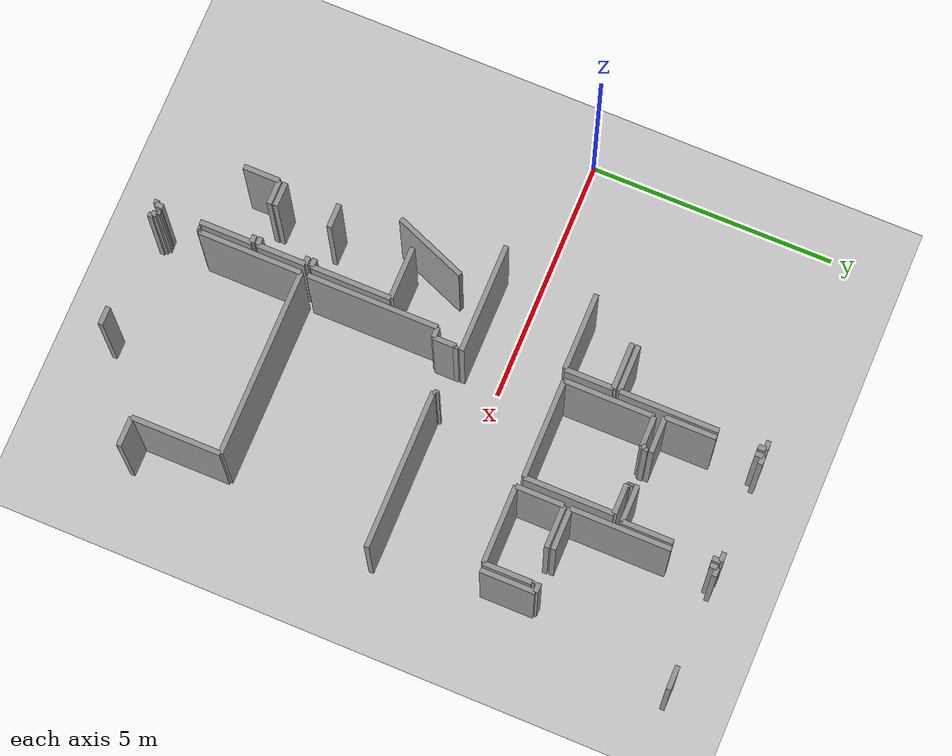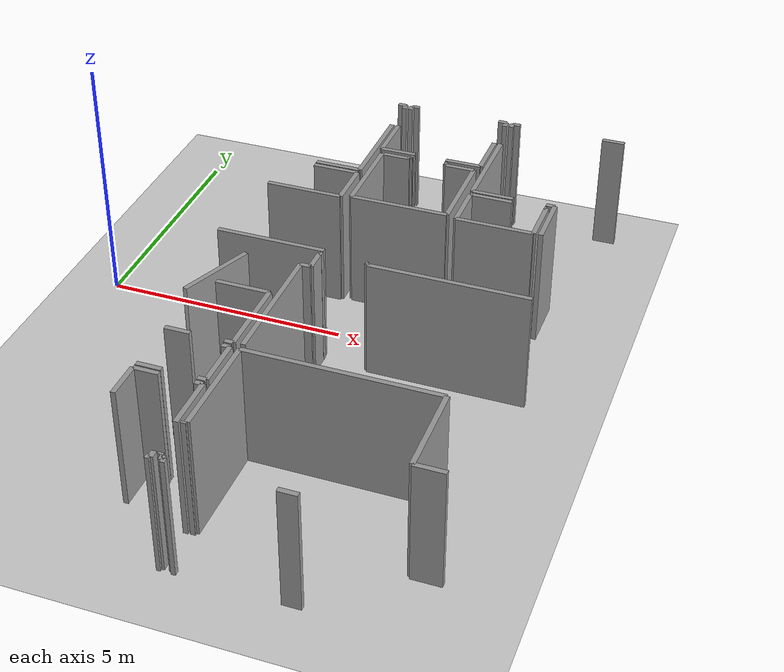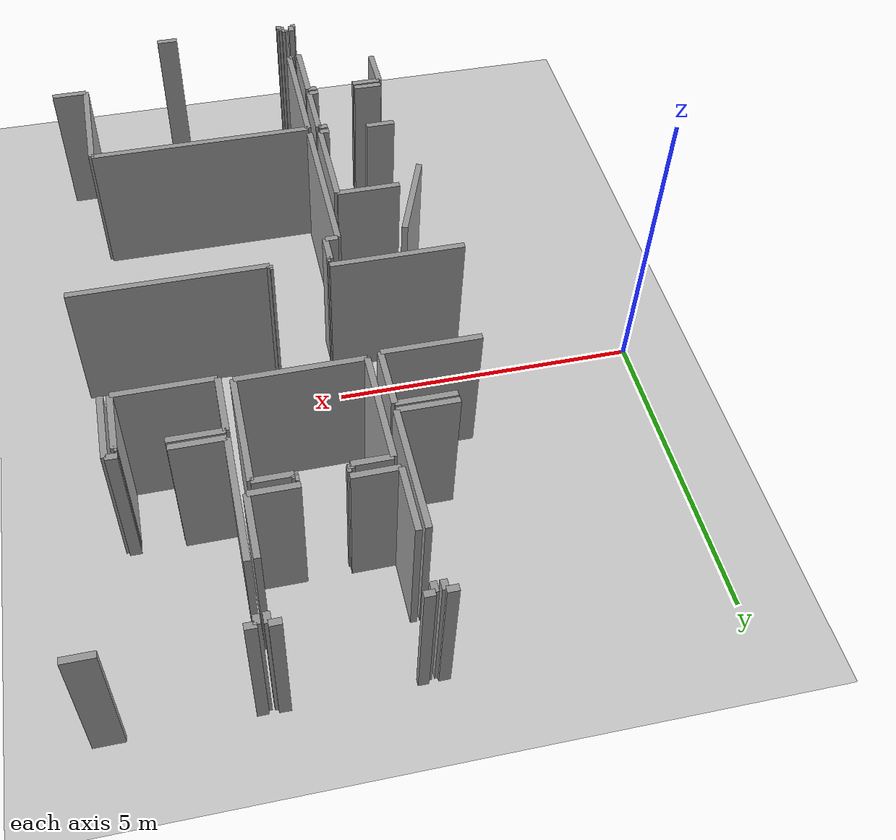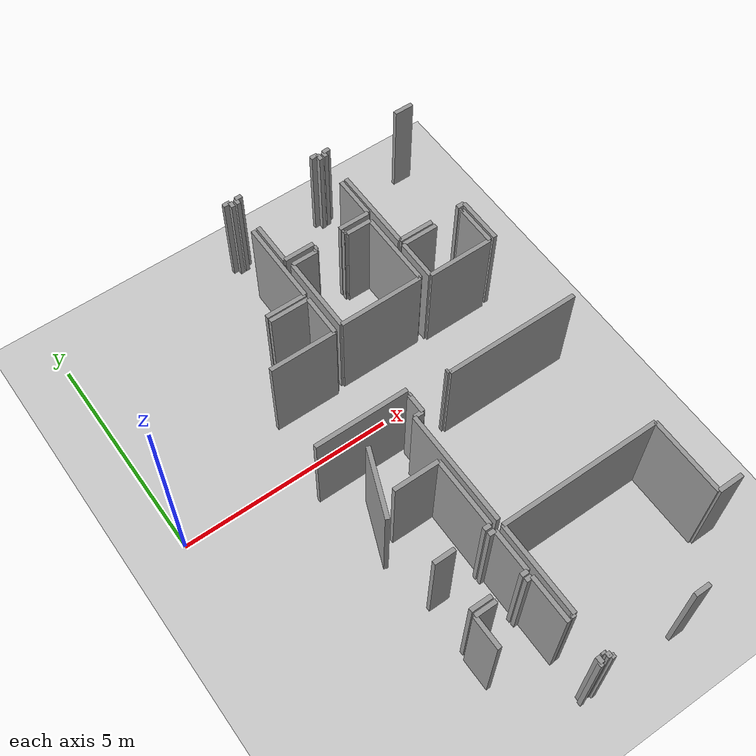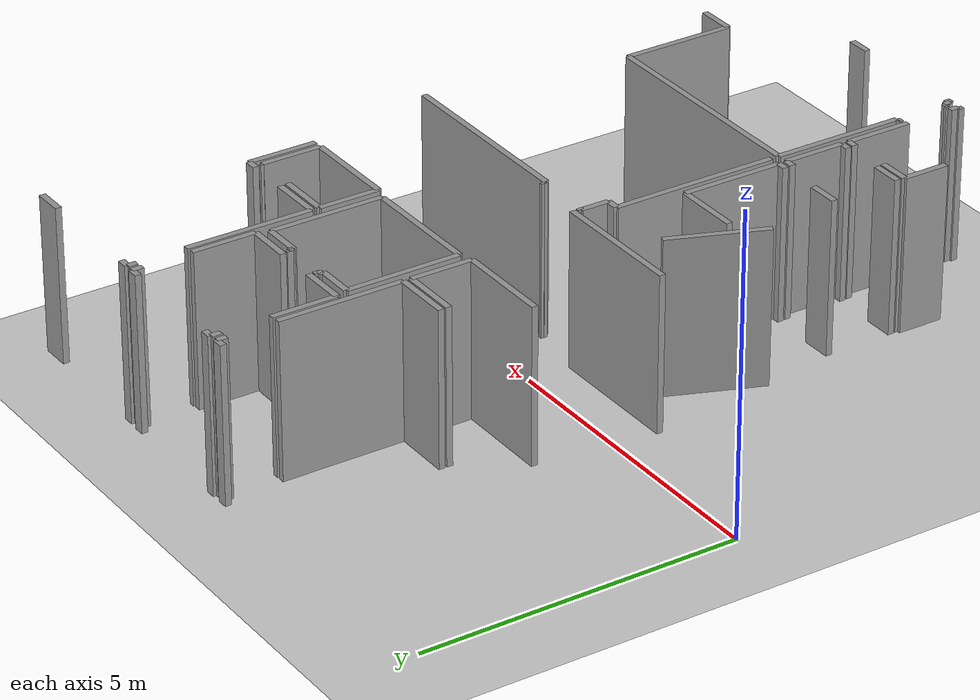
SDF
<sdf version="1.6">
 <world name="default">
  <model name="ground_plane">
   <static>1</static>
   <link name="link">
    <collision name="collision">
     <geometry><plane><normal>0 0 1</normal><size>100 100</size></plane></geometry>
     <surface><friction><ode><mu>100</mu><mu2>50</mu2></ode></friction></surface>
    </collision>
    <visual name="visual">
     <cast_shadows>0</cast_shadows>
     <geometry><plane><normal>0 0 1</normal><size>100 100</size></plane></geometry>
     <material>
      <script><uri>file://media/materials/scripts/gazebo.material</uri><name>Gazebo/Grey</name></script>
     </material>
    </visual>
   </link>
  </model>
  <model name="0510025537_Layout1_PLAN1">
   <static>1</static>
   <link name="Wall_214">
    <collision name="Wall_214_Collision">
     <geometry><box><size>1.56992278118 0.1 2.5</size></box></geometry>
     <pose>0.78496139059 0 1.25 0 0 0</pose>
    </collision>
    <visual name="Wall_214_Visual">
     <pose>0.78496139059 0 1.25 0 0 0</pose>
     <geometry><box><size>1.56992278118 0.1 2.5</size></box></geometry>
     <material>
      <script><uri>file://media/materials/scripts/gazebo.material</uri><name>Gazebo/Grey</name></script>
      <ambient>1 1 1 1</ambient>
     </material>
    </visual>
    <pose>24.0205884222 -6.77917010866 0 0 0 -1.94953638608</pose>
   </link>
   <link name="Wall_221">
    <collision name="Wall_221_Collision">
     <geometry><box><size>1.06271843426 0.1 2.5</size></box></geometry>
     <pose>0.531359217132 0 1.25 0 0 0</pose>
    </collision>
    <visual name="Wall_221_Visual">
     <pose>0.531359217132 0 1.25 0 0 0</pose>
     <geometry><box><size>1.06271843426 0.1 2.5</size></box></geometry>
     <material>
      <script><uri>file://media/materials/scripts/gazebo.material</uri><name>Gazebo/Grey</name></script>
      <ambient>1 1 1 1</ambient>
     </material>
    </visual>
    <pose>23.8792654254 -7.81539048103 0 0 0 0.0</pose>
   </link>
   <link name="Wall_222">
    <collision name="Wall_222_Collision">
     <geometry><box><size>1.6118065705 0.1 2.5</size></box></geometry>
     <pose>0.805903285251 0 1.25 0 0 0</pose>
    </collision>
    <visual name="Wall_222_Visual">
     <pose>0.805903285251 0 1.25 0 0 0</pose>
     <geometry><box><size>1.6118065705 0.1 2.5</size></box></geometry>
     <material>
      <script><uri>file://media/materials/scripts/gazebo.material</uri><name>Gazebo/Grey</name></script>
      <ambient>1 1 1 1</ambient>
     </material>
    </visual>
    <pose>24.9419838597 -7.81539048103 0 0 0 -1.57079632679</pose>
   </link>
   <link name="Wall_223">
    <collision name="Wall_223_Collision">
     <geometry><box><size>0.160068628074 0.1 2.5</size></box></geometry>
     <pose>0.080034314037 0 1.25 0 0 0</pose>
    </collision>
    <visual name="Wall_223_Visual">
     <pose>0.080034314037 0 1.25 0 0 0</pose>
     <geometry><box><size>0.160068628074 0.1 2.5</size></box></geometry>
     <material>
      <script><uri>file://media/materials/scripts/gazebo.material</uri><name>Gazebo/Grey</name></script>
      <ambient>1 1 1 1</ambient>
     </material>
    </visual>
    <pose>24.9419838597 -9.42719705153 0 0 0 3.14159265359</pose>
   </link>
   <link name="Wall_224">
    <collision name="Wall_224_Collision">
     <geometry><box><size>0.493043354087 0.1 2.5</size></box></geometry>
     <pose>0.246521677044 0 1.25 0 0 0</pose>
    </collision>
    <visual name="Wall_224_Visual">
     <pose>0.246521677044 0 1.25 0 0 0</pose>
     <geometry><box><size>0.493043354087 0.1 2.5</size></box></geometry>
     <material>
      <script><uri>file://media/materials/scripts/gazebo.material</uri><name>Gazebo/Grey</name></script>
      <ambient>1 1 1 1</ambient>
     </material>
    </visual>
    <pose>24.1138082227 -9.42719705153 0 0 0 -3.13914388931</pose>
   </link>
   <link name="Wall_227">
    <collision name="Wall_227_Collision">
     <geometry><box><size>0.153015187139 0.1 2.5</size></box></geometry>
     <pose>0.0765075935693 0 1.25 0 0 0</pose>
    </collision>
    <visual name="Wall_227_Visual">
     <pose>0.0765075935693 0 1.25 0 0 0</pose>
     <geometry><box><size>0.153015187139 0.1 2.5</size></box></geometry>
     <material>
      <script><uri>file://media/materials/scripts/gazebo.material</uri><name>Gazebo/Grey</name></script>
      <ambient>1 1 1 1</ambient>
     </material>
    </visual>
    <pose>24.7902395628 -9.55956027197 0 0 0 0.0</pose>
   </link>
   <link name="Wall_228">
    <collision name="Wall_228_Collision">
     <geometry><box><size>0.973819660672 0.1 2.5</size></box></geometry>
     <pose>0.486909830336 0 1.25 0 0 0</pose>
    </collision>
    <visual name="Wall_228_Visual">
     <pose>0.486909830336 0 1.25 0 0 0</pose>
     <geometry><box><size>0.973819660672 0.1 2.5</size></box></geometry>
     <material>
      <script><uri>file://media/materials/scripts/gazebo.material</uri><name>Gazebo/Grey</name></script>
      <ambient>1 1 1 1</ambient>
     </material>
    </visual>
    <pose>24.94325475 -9.55956027197 0 0 0 -1.57079632679</pose>
   </link>
   <link name="Wall_229">
    <collision name="Wall_229_Collision">
     <geometry><box><size>0.161212429307 0.1 2.5</size></box></geometry>
     <pose>0.0806062146534 0 1.25 0 0 0</pose>
    </collision>
    <visual name="Wall_229_Visual">
     <pose>0.0806062146534 0 1.25 0 0 0</pose>
     <geometry><box><size>0.161212429307 0.1 2.5</size></box></geometry>
     <material>
      <script><uri>file://media/materials/scripts/gazebo.material</uri><name>Gazebo/Grey</name></script>
      <ambient>1 1 1 1</ambient>
     </material>
    </visual>
    <pose>24.94325475 -10.5333799326 0 0 0 3.14159265359</pose>
   </link>
   <link name="Wall_230">
    <collision name="Wall_230_Collision">
     <geometry><box><size>0.487584008335 0.1 2.5</size></box></geometry>
     <pose>0.243792004167 0 1.25 0 0 0</pose>
    </collision>
    <visual name="Wall_230_Visual">
     <pose>0.243792004167 0 1.25 0 0 0</pose>
     <geometry><box><size>0.487584008335 0.1 2.5</size></box></geometry>
     <material>
      <script><uri>file://media/materials/scripts/gazebo.material</uri><name>Gazebo/Grey</name></script>
      <ambient>1 1 1 1</ambient>
     </material>
    </visual>
    <pose>24.1090423842 -10.5333799326 0 0 0 3.13624929248</pose>
   </link>
   <link name="Wall_231">
    <collision name="Wall_231_Collision">
     <geometry><box><size>0.494948211222 0.1 2.5</size></box></geometry>
     <pose>0.247474105611 0 1.25 0 0 0</pose>
    </collision>
    <visual name="Wall_231_Visual">
     <pose>0.247474105611 0 1.25 0 0 0</pose>
     <geometry><box><size>0.494948211222 0.1 2.5</size></box></geometry>
     <material>
      <script><uri>file://media/materials/scripts/gazebo.material</uri><name>Gazebo/Grey</name></script>
      <ambient>1 1 1 1</ambient>
     </material>
    </visual>
    <pose>23.6245790176 -10.6559572981 0 0 0 0.0</pose>
   </link>
   <link name="Wall_232">
    <collision name="Wall_232_Collision">
     <geometry><box><size>0.150791129186 0.1 2.5</size></box></geometry>
     <pose>0.075395564593 0 1.25 0 0 0</pose>
    </collision>
    <visual name="Wall_232_Visual">
     <pose>0.075395564593 0 1.25 0 0 0</pose>
     <geometry><box><size>0.150791129186 0.1 2.5</size></box></geometry>
     <material>
      <script><uri>file://media/materials/scripts/gazebo.material</uri><name>Gazebo/Grey</name></script>
      <ambient>1 1 1 1</ambient>
     </material>
    </visual>
    <pose>24.7901760183 -10.6559572981 0 0 0 0.0</pose>
   </link>
   <link name="Wall_233">
    <collision name="Wall_233_Collision">
     <geometry><box><size>1.0594776641 0.1 2.5</size></box></geometry>
     <pose>0.529738832052 0 1.25 0 0 0</pose>
    </collision>
    <visual name="Wall_233_Visual">
     <pose>0.529738832052 0 1.25 0 0 0</pose>
     <geometry><box><size>1.0594776641 0.1 2.5</size></box></geometry>
     <material>
      <script><uri>file://media/materials/scripts/gazebo.material</uri><name>Gazebo/Grey</name></script>
      <ambient>1 1 1 1</ambient>
     </material>
    </visual>
    <pose>24.9409671475 -10.6559572981 0 0 0 -1.57079632679</pose>
   </link>
   <link name="Wall_234">
    <collision name="Wall_234_Collision">
     <geometry><box><size>0.149965050518 0.1 2.5</size></box></geometry>
     <pose>0.0749825252589 0 1.25 0 0 0</pose>
    </collision>
    <visual name="Wall_234_Visual">
     <pose>0.0749825252589 0 1.25 0 0 0</pose>
     <geometry><box><size>0.149965050518 0.1 2.5</size></box></geometry>
     <material>
      <script><uri>file://media/materials/scripts/gazebo.material</uri><name>Gazebo/Grey</name></script>
      <ambient>1 1 1 1</ambient>
     </material>
    </visual>
    <pose>24.9409671475 -12.4803202643 0 0 0 -1.57079632679</pose>
   </link>
   <link name="Wall_235">
    <collision name="Wall_235_Collision">
     <geometry><box><size>0.0826714113236 0.1 2.5</size></box></geometry>
     <pose>0.0413357056618 0 1.25 0 0 0</pose>
    </collision>
    <visual name="Wall_235_Visual">
     <pose>0.0413357056618 0 1.25 0 0 0</pose>
     <geometry><box><size>0.0826714113236 0.1 2.5</size></box></geometry>
     <material>
      <script><uri>file://media/materials/scripts/gazebo.material</uri><name>Gazebo/Grey</name></script>
      <ambient>1 1 1 1</ambient>
     </material>
    </visual>
    <pose>24.9409671475 -12.6302853149 0 0 0 3.14159265359</pose>
   </link>
   <link name="Wall_239">
    <collision name="Wall_239_Collision">
     <geometry><box><size>0.732668234098 0.1 2.5</size></box></geometry>
     <pose>0.366334117049 0 1.25 0 0 0</pose>
    </collision>
    <visual name="Wall_239_Visual">
     <pose>0.366334117049 0 1.25 0 0 0</pose>
     <geometry><box><size>0.732668234098 0.1 2.5</size></box></geometry>
     <material>
      <script><uri>file://media/materials/scripts/gazebo.material</uri><name>Gazebo/Grey</name></script>
      <ambient>1 1 1 1</ambient>
     </material>
    </visual>
    <pose>23.6245790176 -11.3886255322 0 0 0 1.57079632679</pose>
   </link>
   <link name="Wall_240">
    <collision name="Wall_240_Collision">
     <geometry><box><size>3.77155747601 0.1 2.5</size></box></geometry>
     <pose>1.88577873801 0 1.25 0 0 0</pose>
    </collision>
    <visual name="Wall_240_Visual">
     <pose>1.88577873801 0 1.25 0 0 0</pose>
     <geometry><box><size>3.77155747601 0.1 2.5</size></box></geometry>
     <material>
      <script><uri>file://media/materials/scripts/gazebo.material</uri><name>Gazebo/Grey</name></script>
      <ambient>1 1 1 1</ambient>
     </material>
    </visual>
    <pose>25.1293130838 -9.56324585372 0 0 0 0.0</pose>
   </link>
   <link name="Wall_241">
    <collision name="Wall_241_Collision">
     <geometry><box><size>1.79875452755 0.1 2.5</size></box></geometry>
     <pose>0.899377263773 0 1.25 0 0 0</pose>
    </collision>
    <visual name="Wall_241_Visual">
     <pose>0.899377263773 0 1.25 0 0 0</pose>
     <geometry><box><size>1.79875452755 0.1 2.5</size></box></geometry>
     <material>
      <script><uri>file://media/materials/scripts/gazebo.material</uri><name>Gazebo/Grey</name></script>
      <ambient>1 1 1 1</ambient>
     </material>
    </visual>
    <pose>28.9008705598 -9.56324585372 0 0 0 -1.57079632679</pose>
   </link>
   <link name="Wall_242">
    <collision name="Wall_242_Collision">
     <geometry><box><size>0.589693080003 0.1 2.5</size></box></geometry>
     <pose>0.294846540001 0 1.25 0 0 0</pose>
    </collision>
    <visual name="Wall_242_Visual">
     <pose>0.294846540001 0 1.25 0 0 0</pose>
     <geometry><box><size>0.589693080003 0.1 2.5</size></box></geometry>
     <material>
      <script><uri>file://media/materials/scripts/gazebo.material</uri><name>Gazebo/Grey</name></script>
      <ambient>1 1 1 1</ambient>
     </material>
    </visual>
    <pose>28.9008705598 -11.3620003813 0 0 0 0.0</pose>
   </link>
   <link name="Wall_246">
    <collision name="Wall_246_Collision">
     <geometry><box><size>0.364681959713 0.1 2.5</size></box></geometry>
     <pose>0.182340979856 0 1.25 0 0 0</pose>
    </collision>
    <visual name="Wall_246_Visual">
     <pose>0.182340979856 0 1.25 0 0 0</pose>
     <geometry><box><size>0.364681959713 0.1 2.5</size></box></geometry>
     <material>
      <script><uri>file://media/materials/scripts/gazebo.material</uri><name>Gazebo/Grey</name></script>
      <ambient>1 1 1 1</ambient>
     </material>
    </visual>
    <pose>27.4918980746 -12.6327000064 0 0 0 3.14159265359</pose>
   </link>
   <link name="Wall_247">
    <collision name="Wall_247_Collision">
     <geometry><box><size>0.087882061384 0.1 2.5</size></box></geometry>
     <pose>0.043941030692 0 1.25 0 0 0</pose>
    </collision>
    <visual name="Wall_247_Visual">
     <pose>0.043941030692 0 1.25 0 0 0</pose>
     <geometry><box><size>0.087882061384 0.1 2.5</size></box></geometry>
     <material>
      <script><uri>file://media/materials/scripts/gazebo.material</uri><name>Gazebo/Grey</name></script>
      <ambient>1 1 1 1</ambient>
     </material>
    </visual>
    <pose>25.2171951452 -12.6327000064 0 0 0 3.14159265359</pose>
   </link>
   <link name="Wall_248">
    <collision name="Wall_248_Collision">
     <geometry><box><size>0.110313274449 0.1 2.5</size></box></geometry>
     <pose>0.0551566372244 0 1.25 0 0 0</pose>
    </collision>
    <visual name="Wall_248_Visual">
     <pose>0.0551566372244 0 1.25 0 0 0</pose>
     <geometry><box><size>0.110313274449 0.1 2.5</size></box></geometry>
     <material>
      <script><uri>file://media/materials/scripts/gazebo.material</uri><name>Gazebo/Grey</name></script>
      <ambient>1 1 1 1</ambient>
     </material>
    </visual>
    <pose>25.1293130838 -12.6327000064 0 0 0 1.57079632679</pose>
   </link>
   <link name="Wall_249">
    <collision name="Wall_249_Collision">
     <geometry><box><size>0.0589057634873 0.1 2.5</size></box></geometry>
     <pose>0.0294528817437 0 1.25 0 0 0</pose>
    </collision>
    <visual name="Wall_249_Visual">
     <pose>0.0294528817437 0 1.25 0 0 0</pose>
     <geometry><box><size>0.0589057634873 0.1 2.5</size></box></geometry>
     <material>
      <script><uri>file://media/materials/scripts/gazebo.material</uri><name>Gazebo/Grey</name></script>
      <ambient>1 1 1 1</ambient>
     </material>
    </visual>
    <pose>25.1293130838 -12.5223867319 0 0 0 3.14159265359</pose>
   </link>
   <link name="Wall_250">
    <collision name="Wall_250_Collision">
     <geometry><box><size>0.0493740865476 0.1 2.5</size></box></geometry>
     <pose>0.0246870432738 0 1.25 0 0 0</pose>
    </collision>
    <visual name="Wall_250_Visual">
     <pose>0.0246870432738 0 1.25 0 0 0</pose>
     <geometry><box><size>0.0493740865476 0.1 2.5</size></box></geometry>
     <material>
      <script><uri>file://media/materials/scripts/gazebo.material</uri><name>Gazebo/Grey</name></script>
      <ambient>1 1 1 1</ambient>
     </material>
    </visual>
    <pose>25.0704073203 -12.5223867319 0 0 0 1.57079632679</pose>
   </link>
   <link name="Wall_251">
    <collision name="Wall_251_Collision">
     <geometry><box><size>0.0510897883968 0.1 2.5</size></box></geometry>
     <pose>0.0255448941984 0 1.25 0 0 0</pose>
    </collision>
    <visual name="Wall_251_Visual">
     <pose>0.0255448941984 0 1.25 0 0 0</pose>
     <geometry><box><size>0.0510897883968 0.1 2.5</size></box></geometry>
     <material>
      <script><uri>file://media/materials/scripts/gazebo.material</uri><name>Gazebo/Grey</name></script>
      <ambient>1 1 1 1</ambient>
     </material>
    </visual>
    <pose>25.0704073203 -11.7058397407 0 0 0 1.57079632679</pose>
   </link>
   <link name="Wall_252">
    <collision name="Wall_252_Collision">
     <geometry><box><size>0.0529325792718 0.1 2.5</size></box></geometry>
     <pose>0.0264662896359 0 1.25 0 0 0</pose>
    </collision>
    <visual name="Wall_252_Visual">
     <pose>0.0264662896359 0 1.25 0 0 0</pose>
     <geometry><box><size>0.0529325792718 0.1 2.5</size></box></geometry>
     <material>
      <script><uri>file://media/materials/scripts/gazebo.material</uri><name>Gazebo/Grey</name></script>
      <ambient>1 1 1 1</ambient>
     </material>
    </visual>
    <pose>25.0704073203 -11.6547499523 0 0 0 0.0</pose>
   </link>
   <link name="Wall_253">
    <collision name="Wall_253_Collision">
     <geometry><box><size>2.09151262809 0.1 2.5</size></box></geometry>
     <pose>1.04575631405 0 1.25 0 0 0</pose>
    </collision>
    <visual name="Wall_253_Visual">
     <pose>1.04575631405 0 1.25 0 0 0</pose>
     <geometry><box><size>2.09151262809 0.1 2.5</size></box></geometry>
     <material>
      <script><uri>file://media/materials/scripts/gazebo.material</uri><name>Gazebo/Grey</name></script>
      <ambient>1 1 1 1</ambient>
     </material>
    </visual>
    <pose>25.1233398996 -11.6547499523 0 0 0 1.56794040699</pose>
   </link>
   <link name="Wall_283">
    <collision name="Wall_283_Collision">
     <geometry><box><size>2.64955201118 0.1 2.5</size></box></geometry>
     <pose>1.32477600559 0 1.25 0 0 0</pose>
    </collision>
    <visual name="Wall_283_Visual">
     <pose>1.32477600559 0 1.25 0 0 0</pose>
     <geometry><box><size>2.64955201118 0.1 2.5</size></box></geometry>
     <material>
      <script><uri>file://media/materials/scripts/gazebo.material</uri><name>Gazebo/Grey</name></script>
      <ambient>1 1 1 1</ambient>
     </material>
    </visual>
    <pose>25.1270890259 -9.42687932897 0 0 0 1.57079632679</pose>
   </link>
   <link name="Wall_284">
    <collision name="Wall_284_Collision">
     <geometry><box><size>0.206773845078 0.1 2.5</size></box></geometry>
     <pose>0.103386922539 0 1.25 0 0 0</pose>
    </collision>
    <visual name="Wall_284_Visual">
     <pose>0.103386922539 0 1.25 0 0 0</pose>
     <geometry><box><size>0.206773845078 0.1 2.5</size></box></geometry>
     <material>
      <script><uri>file://media/materials/scripts/gazebo.material</uri><name>Gazebo/Grey</name></script>
      <ambient>1 1 1 1</ambient>
     </material>
    </visual>
    <pose>25.1270890259 -6.77732731779 0 0 0 0.0</pose>
   </link>
   <link name="Wall_285">
    <collision name="Wall_285_Collision">
     <geometry><box><size>0.457584037618 0.1 2.5</size></box></geometry>
     <pose>0.228792018809 0 1.25 0 0 0</pose>
    </collision>
    <visual name="Wall_285_Visual">
     <pose>0.228792018809 0 1.25 0 0 0</pose>
     <geometry><box><size>0.457584037618 0.1 2.5</size></box></geometry>
     <material>
      <script><uri>file://media/materials/scripts/gazebo.material</uri><name>Gazebo/Grey</name></script>
      <ambient>1 1 1 1</ambient>
     </material>
    </visual>
    <pose>25.3338628709 -6.77732731779 0 0 0 1.57079632679</pose>
   </link>
   <link name="Wall_286">
    <collision name="Wall_286_Collision">
     <geometry><box><size>0.0519158670649 0.1 2.5</size></box></geometry>
     <pose>0.0259579335324 0 1.25 0 0 0</pose>
    </collision>
    <visual name="Wall_286_Visual">
     <pose>0.0259579335324 0 1.25 0 0 0</pose>
     <geometry><box><size>0.0519158670649 0.1 2.5</size></box></geometry>
     <material>
      <script><uri>file://media/materials/scripts/gazebo.material</uri><name>Gazebo/Grey</name></script>
      <ambient>1 1 1 1</ambient>
     </material>
    </visual>
    <pose>25.3338628709 -6.31974328017 0 0 0 0.0</pose>
   </link>
   <link name="Wall_287">
    <collision name="Wall_287_Collision">
     <geometry><box><size>0.0464510389528 0.1 2.5</size></box></geometry>
     <pose>0.0232255194764 0 1.25 0 0 0</pose>
    </collision>
    <visual name="Wall_287_Visual">
     <pose>0.0232255194764 0 1.25 0 0 0</pose>
     <geometry><box><size>0.0464510389528 0.1 2.5</size></box></geometry>
     <material>
      <script><uri>file://media/materials/scripts/gazebo.material</uri><name>Gazebo/Grey</name></script>
      <ambient>1 1 1 1</ambient>
     </material>
    </visual>
    <pose>26.2525894389 -6.31974328017 0 0 0 0.0</pose>
   </link>
   <link name="Wall_288">
    <collision name="Wall_288_Collision">
     <geometry><box><size>0.0525513121942 0.1 2.5</size></box></geometry>
     <pose>0.0262756560971 0 1.25 0 0 0</pose>
    </collision>
    <visual name="Wall_288_Visual">
     <pose>0.0262756560971 0 1.25 0 0 0</pose>
     <geometry><box><size>0.0525513121942 0.1 2.5</size></box></geometry>
     <material>
      <script><uri>file://media/materials/scripts/gazebo.material</uri><name>Gazebo/Grey</name></script>
      <ambient>1 1 1 1</ambient>
     </material>
    </visual>
    <pose>26.2990404779 -6.31974328017 0 0 0 -1.57079632679</pose>
   </link>
   <link name="Wall_289">
    <collision name="Wall_289_Collision">
     <geometry><box><size>3.19520874372 0.1 2.5</size></box></geometry>
     <pose>1.59760437186 0 1.25 0 0 0</pose>
    </collision>
    <visual name="Wall_289_Visual">
     <pose>1.59760437186 0 1.25 0 0 0</pose>
     <geometry><box><size>3.19520874372 0.1 2.5</size></box></geometry>
     <material>
      <script><uri>file://media/materials/scripts/gazebo.material</uri><name>Gazebo/Grey</name></script>
      <ambient>1 1 1 1</ambient>
     </material>
    </visual>
    <pose>26.2990404779 -6.37229459236 0 0 0 0.0</pose>
   </link>
   <link name="Wall_301">
    <collision name="Wall_301_Collision">
     <geometry><box><size>0.961936836754 0.1 2.5</size></box></geometry>
     <pose>0.480968418377 0 1.25 0 0 0</pose>
    </collision>
    <visual name="Wall_301_Visual">
     <pose>0.480968418377 0 1.25 0 0 0</pose>
     <geometry><box><size>0.961936836754 0.1 2.5</size></box></geometry>
     <material>
      <script><uri>file://media/materials/scripts/gazebo.material</uri><name>Gazebo/Grey</name></script>
      <ambient>1 1 1 1</ambient>
     </material>
    </visual>
    <pose>27.378471119 -4.27100463875 0 0 0 1.57079632679</pose>
   </link>
   <link name="Wall_302">
    <collision name="Wall_302_Collision">
     <geometry><box><size>0.85670712334 0.1 2.5</size></box></geometry>
     <pose>0.42835356167 0 1.25 0 0 0</pose>
    </collision>
    <visual name="Wall_302_Visual">
     <pose>0.42835356167 0 1.25 0 0 0</pose>
     <geometry><box><size>0.85670712334 0.1 2.5</size></box></geometry>
     <material>
      <script><uri>file://media/materials/scripts/gazebo.material</uri><name>Gazebo/Grey</name></script>
      <ambient>1 1 1 1</ambient>
     </material>
    </visual>
    <pose>27.378471119 -3.309067802 0 0 0 0.0</pose>
   </link>
   <link name="Wall_303">
    <collision name="Wall_303_Collision">
     <geometry><box><size>0.0455614157717 0.1 2.5</size></box></geometry>
     <pose>0.0227807078859 0 1.25 0 0 0</pose>
    </collision>
    <visual name="Wall_303_Visual">
     <pose>0.0227807078859 0 1.25 0 0 0</pose>
     <geometry><box><size>0.0455614157717 0.1 2.5</size></box></geometry>
     <material>
      <script><uri>file://media/materials/scripts/gazebo.material</uri><name>Gazebo/Grey</name></script>
      <ambient>1 1 1 1</ambient>
     </material>
    </visual>
    <pose>28.8952150982 -3.309067802 0 0 0 0.0</pose>
   </link>
   <link name="Wall_304">
    <collision name="Wall_304_Collision">
     <geometry><box><size>0.958251255004 0.1 2.5</size></box></geometry>
     <pose>0.479125627502 0 1.25 0 0 0</pose>
    </collision>
    <visual name="Wall_304_Visual">
     <pose>0.479125627502 0 1.25 0 0 0</pose>
     <geometry><box><size>0.958251255004 0.1 2.5</size></box></geometry>
     <material>
      <script><uri>file://media/materials/scripts/gazebo.material</uri><name>Gazebo/Grey</name></script>
      <ambient>1 1 1 1</ambient>
     </material>
    </visual>
    <pose>28.9407765139 -3.309067802 0 0 0 -1.57079632679</pose>
   </link>
   <link name="Wall_305">
    <collision name="Wall_305_Collision">
     <geometry><box><size>1.56230974219 0.1 2.5</size></box></geometry>
     <pose>0.781154871094 0 1.25 0 0 0</pose>
    </collision>
    <visual name="Wall_305_Visual">
     <pose>0.781154871094 0 1.25 0 0 0</pose>
     <geometry><box><size>1.56230974219 0.1 2.5</size></box></geometry>
     <material>
      <script><uri>file://media/materials/scripts/gazebo.material</uri><name>Gazebo/Grey</name></script>
      <ambient>1 1 1 1</ambient>
     </material>
    </visual>
    <pose>28.9407765139 -4.267319057 0 0 0 -3.13923359183</pose>
   </link>
   <link name="Wall_311">
    <collision name="Wall_311_Collision">
     <geometry><box><size>2.00758086039 0.1 2.5</size></box></geometry>
     <pose>1.0037904302 0 1.25 0 0 0</pose>
    </collision>
    <visual name="Wall_311_Visual">
     <pose>1.0037904302 0 1.25 0 0 0</pose>
     <geometry><box><size>2.00758086039 0.1 2.5</size></box></geometry>
     <material>
      <script><uri>file://media/materials/scripts/gazebo.material</uri><name>Gazebo/Grey</name></script>
      <ambient>1 1 1 1</ambient>
     </material>
    </visual>
    <pose>27.380949355 -3.18127978649 0 0 0 1.57079632679</pose>
   </link>
   <link name="Wall_312">
    <collision name="Wall_312_Collision">
     <geometry><box><size>0.143553409163 0.1 2.5</size></box></geometry>
     <pose>0.0717767045816 0 1.25 0 0 0</pose>
    </collision>
    <visual name="Wall_312_Visual">
     <pose>0.0717767045816 0 1.25 0 0 0</pose>
     <geometry><box><size>0.143553409163 0.1 2.5</size></box></geometry>
     <material>
      <script><uri>file://media/materials/scripts/gazebo.material</uri><name>Gazebo/Grey</name></script>
      <ambient>1 1 1 1</ambient>
     </material>
    </visual>
    <pose>27.380949355 -0.405922348605 0 0 0 1.57079632679</pose>
   </link>
   <link name="Wall_313">
    <collision name="Wall_313_Collision">
     <geometry><box><size>0.172904619686 0.1 2.5</size></box></geometry>
     <pose>0.086452309843 0 1.25 0 0 0</pose>
    </collision>
    <visual name="Wall_313_Visual">
     <pose>0.086452309843 0 1.25 0 0 0</pose>
     <geometry><box><size>0.172904619686 0.1 2.5</size></box></geometry>
     <material>
      <script><uri>file://media/materials/scripts/gazebo.material</uri><name>Gazebo/Grey</name></script>
      <ambient>1 1 1 1</ambient>
     </material>
    </visual>
    <pose>27.380949355 -0.262368939442 0 0 0 0.0</pose>
   </link>
   <link name="Wall_314">
    <collision name="Wall_314_Collision">
     <geometry><box><size>0.469466861537 0.1 2.5</size></box></geometry>
     <pose>0.234733430768 0 1.25 0 0 0</pose>
    </collision>
    <visual name="Wall_314_Visual">
     <pose>0.234733430768 0 1.25 0 0 0</pose>
     <geometry><box><size>0.469466861537 0.1 2.5</size></box></geometry>
     <material>
      <script><uri>file://media/materials/scripts/gazebo.material</uri><name>Gazebo/Grey</name></script>
      <ambient>1 1 1 1</ambient>
     </material>
    </visual>
    <pose>29.3501938108 -0.262368939442 0 0 0 0.0</pose>
   </link>
   <link name="Wall_322">
    <collision name="Wall_322_Collision">
     <geometry><box><size>1.09569803647 0.1 2.5</size></box></geometry>
     <pose>0.547849018237 0 1.25 0 0 0</pose>
    </collision>
    <visual name="Wall_322_Visual">
     <pose>0.547849018237 0 1.25 0 0 0</pose>
     <geometry><box><size>1.09569803647 0.1 2.5</size></box></geometry>
     <material>
      <script><uri>file://media/materials/scripts/gazebo.material</uri><name>Gazebo/Grey</name></script>
      <ambient>1 1 1 1</ambient>
     </material>
    </visual>
    <pose>29.0817182436 -4.27564338819 0 0 0 1.57079632679</pose>
   </link>
   <link name="Wall_323">
    <collision name="Wall_323_Collision">
     <geometry><box><size>0.184215542988 0.1 2.5</size></box></geometry>
     <pose>0.0921077714939 0 1.25 0 0 0</pose>
    </collision>
    <visual name="Wall_323_Visual">
     <pose>0.0921077714939 0 1.25 0 0 0</pose>
     <geometry><box><size>0.184215542988 0.1 2.5</size></box></geometry>
     <material>
      <script><uri>file://media/materials/scripts/gazebo.material</uri><name>Gazebo/Grey</name></script>
      <ambient>1 1 1 1</ambient>
     </material>
    </visual>
    <pose>29.0817182436 -3.17994535172 0 0 0 3.14159265359</pose>
   </link>
   <link name="Wall_324">
    <collision name="Wall_324_Collision">
     <geometry><box><size>0.840758509589 0.1 2.5</size></box></geometry>
     <pose>0.420379254794 0 1.25 0 0 0</pose>
    </collision>
    <visual name="Wall_324_Visual">
     <pose>0.420379254794 0 1.25 0 0 0</pose>
     <geometry><box><size>0.840758509589 0.1 2.5</size></box></geometry>
     <material>
      <script><uri>file://media/materials/scripts/gazebo.material</uri><name>Gazebo/Grey</name></script>
      <ambient>1 1 1 1</ambient>
     </material>
    </visual>
    <pose>28.2217068056 -3.17994535172 0 0 0 -3.1400054733</pose>
   </link>
   <link name="Wall_334">
    <collision name="Wall_334_Collision">
     <geometry><box><size>0.939251445638 0.1 2.5</size></box></geometry>
     <pose>0.469625722819 0 1.25 0 0 0</pose>
    </collision>
    <visual name="Wall_334_Visual">
     <pose>0.469625722819 0 1.25 0 0 0</pose>
     <geometry><box><size>0.939251445638 0.1 2.5</size></box></geometry>
     <material>
      <script><uri>file://media/materials/scripts/gazebo.material</uri><name>Gazebo/Grey</name></script>
      <ambient>1 1 1 1</ambient>
     </material>
    </visual>
    <pose>24.0228760247 -3.30080701531 0 0 0 0.0</pose>
   </link>
   <link name="Wall_335">
    <collision name="Wall_335_Collision">
     <geometry><box><size>0.974264472263 0.1 2.5</size></box></geometry>
     <pose>0.487132236131 0 1.25 0 0 0</pose>
    </collision>
    <visual name="Wall_335_Visual">
     <pose>0.487132236131 0 1.25 0 0 0</pose>
     <geometry><box><size>0.974264472263 0.1 2.5</size></box></geometry>
     <material>
      <script><uri>file://media/materials/scripts/gazebo.material</uri><name>Gazebo/Grey</name></script>
      <ambient>1 1 1 1</ambient>
     </material>
    </visual>
    <pose>24.9621274703 -3.30080701531 0 0 0 -1.57079632679</pose>
   </link>
   <link name="Wall_336">
    <collision name="Wall_336_Collision">
     <geometry><box><size>1.56090754499 0.1 2.5</size></box></geometry>
     <pose>0.780453772495 0 1.25 0 0 0</pose>
    </collision>
    <visual name="Wall_336_Visual">
     <pose>0.780453772495 0 1.25 0 0 0</pose>
     <geometry><box><size>1.56090754499 0.1 2.5</size></box></geometry>
     <material>
      <script><uri>file://media/materials/scripts/gazebo.material</uri><name>Gazebo/Grey</name></script>
      <ambient>1 1 1 1</ambient>
     </material>
    </visual>
    <pose>24.9621274703 -4.27507148758 0 0 0 3.14118555379</pose>
   </link>
   <link name="Wall_350">
    <collision name="Wall_350_Collision">
     <geometry><box><size>0.174493232509 0.1 2.5</size></box></geometry>
     <pose>0.0872466162547 0 1.25 0 0 0</pose>
    </collision>
    <visual name="Wall_350_Visual">
     <pose>0.0872466162547 0 1.25 0 0 0</pose>
     <geometry><box><size>0.174493232509 0.1 2.5</size></box></geometry>
     <material>
      <script><uri>file://media/materials/scripts/gazebo.material</uri><name>Gazebo/Grey</name></script>
      <ambient>1 1 1 1</ambient>
     </material>
    </visual>
    <pose>24.7926542543 -0.258530850861 0 0 0 0.0</pose>
   </link>
   <link name="Wall_351">
    <collision name="Wall_351_Collision">
     <geometry><box><size>0.151636271208 0.1 2.5</size></box></geometry>
     <pose>0.075818135604 0 1.25 0 0 0</pose>
    </collision>
    <visual name="Wall_351_Visual">
     <pose>0.075818135604 0 1.25 0 0 0</pose>
     <geometry><box><size>0.151636271208 0.1 2.5</size></box></geometry>
     <material>
      <script><uri>file://media/materials/scripts/gazebo.material</uri><name>Gazebo/Grey</name></script>
      <ambient>1 1 1 1</ambient>
     </material>
    </visual>
    <pose>24.9671474868 -0.258530850861 0 0 0 -1.57079632679</pose>
   </link>
   <link name="Wall_352">
    <collision name="Wall_352_Collision">
     <geometry><box><size>1.98886700133 0.1 2.5</size></box></geometry>
     <pose>0.994433500667 0 1.25 0 0 0</pose>
    </collision>
    <visual name="Wall_352_Visual">
     <pose>0.994433500667 0 1.25 0 0 0</pose>
     <geometry><box><size>1.98886700133 0.1 2.5</size></box></geometry>
     <material>
      <script><uri>file://media/materials/scripts/gazebo.material</uri><name>Gazebo/Grey</name></script>
      <ambient>1 1 1 1</ambient>
     </material>
    </visual>
    <pose>24.9671474868 -1.18707504607 0 0 0 -1.57079632679</pose>
   </link>
   <link name="Wall_353">
    <collision name="Wall_353_Collision">
     <geometry><box><size>0.947258054267 0.1 2.5</size></box></geometry>
     <pose>0.473629027134 0 1.25 0 0 0</pose>
    </collision>
    <visual name="Wall_353_Visual">
     <pose>0.473629027134 0 1.25 0 0 0</pose>
     <geometry><box><size>0.947258054267 0.1 2.5</size></box></geometry>
     <material>
      <script><uri>file://media/materials/scripts/gazebo.material</uri><name>Gazebo/Grey</name></script>
      <ambient>1 1 1 1</ambient>
     </material>
    </visual>
    <pose>24.9671474868 -3.1759420474 0 0 0 3.14159265359</pose>
   </link>
   <link name="Wall_364">
    <collision name="Wall_364_Collision">
     <geometry><box><size>1.80627819788 0.1 2.5</size></box></geometry>
     <pose>0.903139098939 0 1.25 0 0 0</pose>
    </collision>
    <visual name="Wall_364_Visual">
     <pose>0.903139098939 0 1.25 0 0 0</pose>
     <geometry><box><size>1.80627819788 0.1 2.5</size></box></geometry>
     <material>
      <script><uri>file://media/materials/scripts/gazebo.material</uri><name>Gazebo/Grey</name></script>
      <ambient>1 1 1 1</ambient>
     </material>
    </visual>
    <pose>25.1733494313 -4.20549024592 0 0 0 1.57079632679</pose>
   </link>
   <link name="Wall_365">
    <collision name="Wall_365_Collision">
     <geometry><box><size>0.607993899727 0.1 2.5</size></box></geometry>
     <pose>0.303996949863 0 1.25 0 0 0</pose>
    </collision>
    <visual name="Wall_365_Visual">
     <pose>0.303996949863 0 1.25 0 0 0</pose>
     <geometry><box><size>0.607993899727 0.1 2.5</size></box></geometry>
     <material>
      <script><uri>file://media/materials/scripts/gazebo.material</uri><name>Gazebo/Grey</name></script>
      <ambient>1 1 1 1</ambient>
     </material>
    </visual>
    <pose>25.1733494313 -2.39921204804 0 0 0 0.0</pose>
   </link>
   <link name="Wall_366">
    <collision name="Wall_366_Collision">
     <geometry><box><size>0.0812861409417 0.1 2.5</size></box></geometry>
     <pose>0.0406430704709 0 1.25 0 0 0</pose>
    </collision>
    <visual name="Wall_366_Visual">
     <pose>0.0406430704709 0 1.25 0 0 0</pose>
     <geometry><box><size>0.0812861409417 0.1 2.5</size></box></geometry>
     <material>
      <script><uri>file://media/materials/scripts/gazebo.material</uri><name>Gazebo/Grey</name></script>
      <ambient>1 1 1 1</ambient>
     </material>
    </visual>
    <pose>25.781343331 -2.39921204804 0 0 0 1.57079632679</pose>
   </link>
   <link name="Wall_367">
    <collision name="Wall_367_Collision">
     <geometry><box><size>0.0686280739658 0.1 2.5</size></box></geometry>
     <pose>0.0343140369829 0 1.25 0 0 0</pose>
    </collision>
    <visual name="Wall_367_Visual">
     <pose>0.0343140369829 0 1.25 0 0 0</pose>
     <geometry><box><size>0.0686280739658 0.1 2.5</size></box></geometry>
     <material>
      <script><uri>file://media/materials/scripts/gazebo.material</uri><name>Gazebo/Grey</name></script>
      <ambient>1 1 1 1</ambient>
     </material>
    </visual>
    <pose>25.781343331 -2.3179259071 0 0 0 0.0</pose>
   </link>
   <link name="Wall_368">
    <collision name="Wall_368_Collision">
     <geometry><box><size>0.0516616890132 0.1 2.5</size></box></geometry>
     <pose>0.0258308445066 0 1.25 0 0 0</pose>
    </collision>
    <visual name="Wall_368_Visual">
     <pose>0.0258308445066 0 1.25 0 0 0</pose>
     <geometry><box><size>0.0516616890132 0.1 2.5</size></box></geometry>
     <material>
      <script><uri>file://media/materials/scripts/gazebo.material</uri><name>Gazebo/Grey</name></script>
      <ambient>1 1 1 1</ambient>
     </material>
    </visual>
    <pose>26.5076571138 -2.3179259071 0 0 0 0.0</pose>
   </link>
   <link name="Wall_369">
    <collision name="Wall_369_Collision">
     <geometry><box><size>0.0771239753447 0.1 2.5</size></box></geometry>
     <pose>0.0385619876724 0 1.25 0 0 0</pose>
    </collision>
    <visual name="Wall_369_Visual">
     <pose>0.0385619876724 0 1.25 0 0 0</pose>
     <geometry><box><size>0.0771239753447 0.1 2.5</size></box></geometry>
     <material>
      <script><uri>file://media/materials/scripts/gazebo.material</uri><name>Gazebo/Grey</name></script>
      <ambient>1 1 1 1</ambient>
     </material>
    </visual>
    <pose>26.5593188028 -2.3179259071 0 0 0 -1.57079632679</pose>
   </link>
   <link name="Wall_370">
    <collision name="Wall_370_Collision">
     <geometry><box><size>0.605642752748 0.1 2.5</size></box></geometry>
     <pose>0.302821376374 0 1.25 0 0 0</pose>
    </collision>
    <visual name="Wall_370_Visual">
     <pose>0.302821376374 0 1.25 0 0 0</pose>
     <geometry><box><size>0.605642752748 0.1 2.5</size></box></geometry>
     <material>
      <script><uri>file://media/materials/scripts/gazebo.material</uri><name>Gazebo/Grey</name></script>
      <ambient>1 1 1 1</ambient>
     </material>
    </visual>
    <pose>26.5593188028 -2.39504988244 0 0 0 0.0</pose>
   </link>
   <link name="Wall_371">
    <collision name="Wall_371_Collision">
     <geometry><box><size>1.80357755608 0.1 2.5</size></box></geometry>
     <pose>0.901788778039 0 1.25 0 0 0</pose>
    </collision>
    <visual name="Wall_371_Visual">
     <pose>0.901788778039 0 1.25 0 0 0</pose>
     <geometry><box><size>1.80357755608 0.1 2.5</size></box></geometry>
     <material>
      <script><uri>file://media/materials/scripts/gazebo.material</uri><name>Gazebo/Grey</name></script>
      <ambient>1 1 1 1</ambient>
     </material>
    </visual>
    <pose>27.1649615556 -2.39504988244 0 0 0 -1.57079632679</pose>
   </link>
   <link name="Wall_372">
    <collision name="Wall_372_Collision">
     <geometry><box><size>1.99162394838 0.1 2.5</size></box></geometry>
     <pose>0.995811974189 0 1.25 0 0 0</pose>
    </collision>
    <visual name="Wall_372_Visual">
     <pose>0.995811974189 0 1.25 0 0 0</pose>
     <geometry><box><size>1.99162394838 0.1 2.5</size></box></geometry>
     <material>
      <script><uri>file://media/materials/scripts/gazebo.material</uri><name>Gazebo/Grey</name></script>
      <ambient>1 1 1 1</ambient>
     </material>
    </visual>
    <pose>27.1649615556 -4.19862743852 0 0 0 -3.13814681183</pose>
   </link>
   <link name="Wall_373">
    <collision name="Wall_373_Collision">
     <geometry><box><size>1.0292495393 0.1 2.5</size></box></geometry>
     <pose>0.514624769651 0 1.25 0 0 0</pose>
    </collision>
    <visual name="Wall_373_Visual">
     <pose>0.514624769651 0 1.25 0 0 0</pose>
     <geometry><box><size>1.0292495393 0.1 2.5</size></box></geometry>
     <material>
      <script><uri>file://media/materials/scripts/gazebo.material</uri><name>Gazebo/Grey</name></script>
      <ambient>1 1 1 1</ambient>
     </material>
    </visual>
    <pose>25.105801614 -2.20593505751 0 0 0 1.57079632679</pose>
   </link>
   <link name="Wall_374">
    <collision name="Wall_374_Collision">
     <geometry><box><size>0.157869987927 0.1 2.5</size></box></geometry>
     <pose>0.0789349939633 0 1.25 0 0 0</pose>
    </collision>
    <visual name="Wall_374_Visual">
     <pose>0.0789349939633 0 1.25 0 0 0</pose>
     <geometry><box><size>0.157869987927 0.1 2.5</size></box></geometry>
     <material>
      <script><uri>file://media/materials/scripts/gazebo.material</uri><name>Gazebo/Grey</name></script>
      <ambient>1 1 1 1</ambient>
     </material>
    </visual>
    <pose>25.105801614 -0.408089216496 0 0 0 1.57079632679</pose>
   </link>
   <link name="Wall_375">
    <collision name="Wall_375_Collision">
     <geometry><box><size>0.162546864078 0.1 2.5</size></box></geometry>
     <pose>0.0812734320391 0 1.25 0 0 0</pose>
    </collision>
    <visual name="Wall_375_Visual">
     <pose>0.0812734320391 0 1.25 0 0 0</pose>
     <geometry><box><size>0.162546864078 0.1 2.5</size></box></geometry>
     <material>
      <script><uri>file://media/materials/scripts/gazebo.material</uri><name>Gazebo/Grey</name></script>
      <ambient>1 1 1 1</ambient>
     </material>
    </visual>
    <pose>25.105801614 -0.25021922857 0 0 0 0.0</pose>
   </link>
   <link name="Wall_376">
    <collision name="Wall_376_Collision">
     <geometry><box><size>0.178814259389 0.1 2.5</size></box></geometry>
     <pose>0.0894071296943 0 1.25 0 0 0</pose>
    </collision>
    <visual name="Wall_376_Visual">
     <pose>0.0894071296943 0 1.25 0 0 0</pose>
     <geometry><box><size>0.178814259389 0.1 2.5</size></box></geometry>
     <material>
      <script><uri>file://media/materials/scripts/gazebo.material</uri><name>Gazebo/Grey</name></script>
      <ambient>1 1 1 1</ambient>
     </material>
    </visual>
    <pose>27.0674842727 -0.25021922857 0 0 0 0.0</pose>
   </link>
   <link name="Wall_377">
    <collision name="Wall_377_Collision">
     <geometry><box><size>0.167446146025 0.1 2.5</size></box></geometry>
     <pose>0.0837230730126 0 1.25 0 0 0</pose>
    </collision>
    <visual name="Wall_377_Visual">
     <pose>0.0837230730126 0 1.25 0 0 0</pose>
     <geometry><box><size>0.167446146025 0.1 2.5</size></box></geometry>
     <material>
      <script><uri>file://media/materials/scripts/gazebo.material</uri><name>Gazebo/Grey</name></script>
      <ambient>1 1 1 1</ambient>
     </material>
    </visual>
    <pose>27.2462985321 -0.25021922857 0 0 0 -1.57079632679</pose>
   </link>
   <link name="Wall_378">
    <collision name="Wall_378_Collision">
     <geometry><box><size>1.01309016966 0.1 2.5</size></box></geometry>
     <pose>0.506545084832 0 1.25 0 0 0</pose>
    </collision>
    <visual name="Wall_378_Visual">
     <pose>0.506545084832 0 1.25 0 0 0</pose>
     <geometry><box><size>1.01309016966 0.1 2.5</size></box></geometry>
     <material>
      <script><uri>file://media/materials/scripts/gazebo.material</uri><name>Gazebo/Grey</name></script>
      <ambient>1 1 1 1</ambient>
     </material>
    </visual>
    <pose>27.2462985321 -1.1876977823 0 0 0 -1.57079632679</pose>
   </link>
   <link name="Wall_379">
    <collision name="Wall_379_Collision">
     <geometry><box><size>0.744233335451 0.1 2.5</size></box></geometry>
     <pose>0.372116667726 0 1.25 0 0 0</pose>
    </collision>
    <visual name="Wall_379_Visual">
     <pose>0.372116667726 0 1.25 0 0 0</pose>
     <geometry><box><size>0.744233335451 0.1 2.5</size></box></geometry>
     <material>
      <script><uri>file://media/materials/scripts/gazebo.material</uri><name>Gazebo/Grey</name></script>
      <ambient>1 1 1 1</ambient>
     </material>
    </visual>
    <pose>27.2462985321 -2.20078795196 0 0 0 3.14159265359</pose>
   </link>
   <link name="Wall_380">
    <collision name="Wall_380_Collision">
     <geometry><box><size>0.724362190047 0.1 2.5</size></box></geometry>
     <pose>0.362181095024 0 1.25 0 0 0</pose>
    </collision>
    <visual name="Wall_380_Visual">
     <pose>0.362181095024 0 1.25 0 0 0</pose>
     <geometry><box><size>0.724362190047 0.1 2.5</size></box></geometry>
     <material>
      <script><uri>file://media/materials/scripts/gazebo.material</uri><name>Gazebo/Grey</name></script>
      <ambient>1 1 1 1</ambient>
     </material>
    </visual>
    <pose>25.8301455169 -2.20078795196 0 0 0 -3.13448688671</pose>
   </link>
   <link name="Wall_401">
    <collision name="Wall_401_Collision">
     <geometry><box><size>2.19692444557 0.1 2.5</size></box></geometry>
     <pose>1.09846222279 0 1.25 0 0 0</pose>
    </collision>
    <visual name="Wall_401_Visual">
     <pose>1.09846222279 0 1.25 0 0 0</pose>
     <geometry><box><size>2.19692444557 0.1 2.5</size></box></geometry>
     <material>
      <script><uri>file://media/materials/scripts/gazebo.material</uri><name>Gazebo/Grey</name></script>
      <ambient>1 1 1 1</ambient>
     </material>
    </visual>
    <pose>25.370782233 -6.19850034949 0 0 0 3.14159265359</pose>
   </link>
   <pose>-20.35 5.48517824236 0 0 0 0</pose>
  </model>
 </world>
</sdf>
